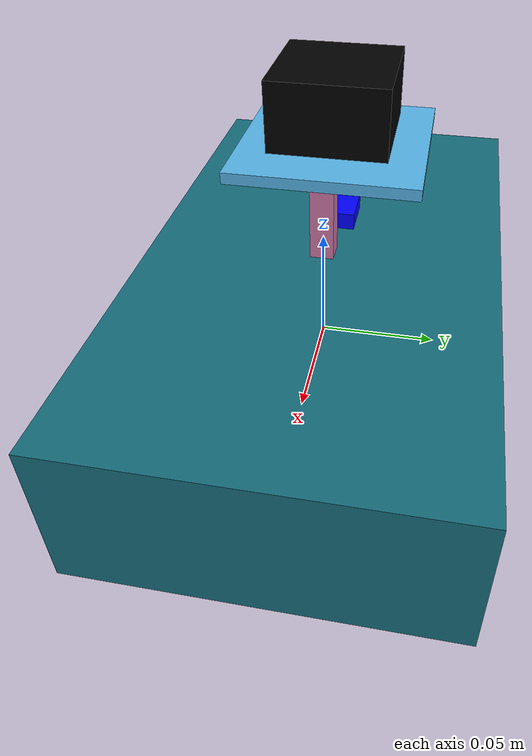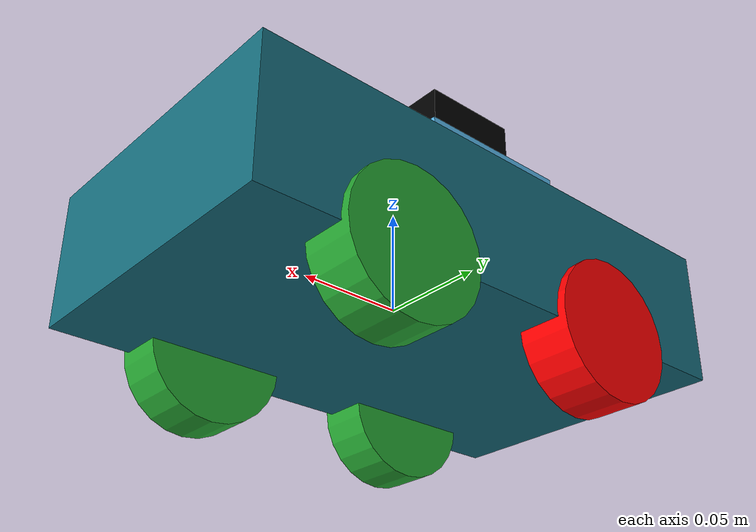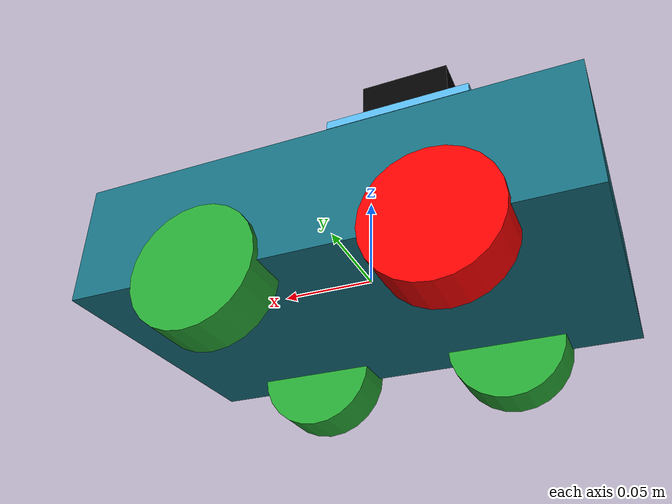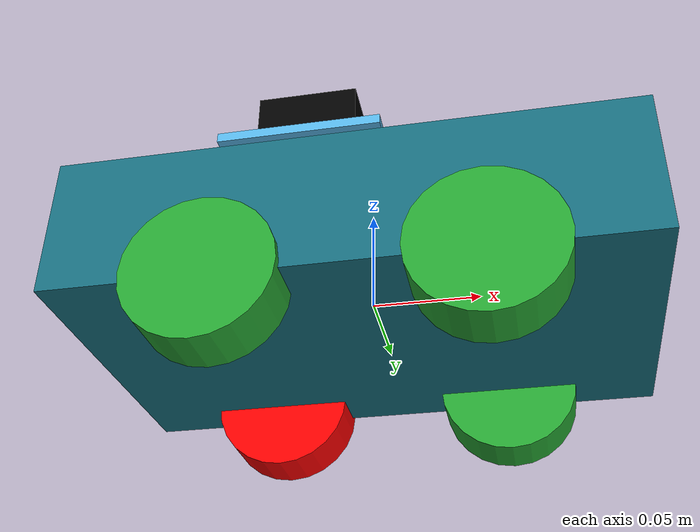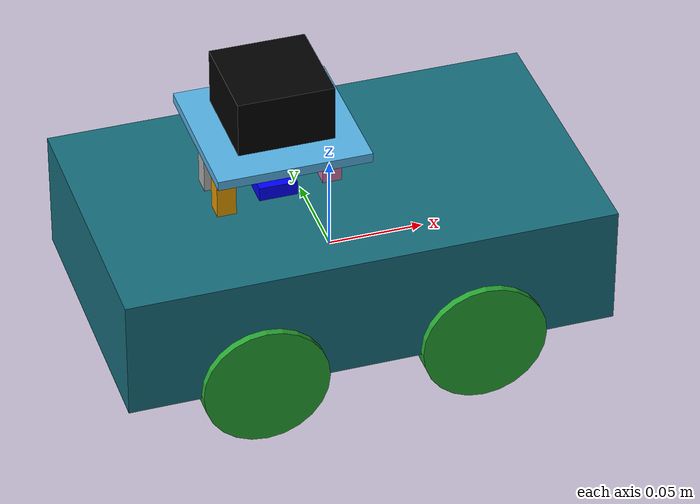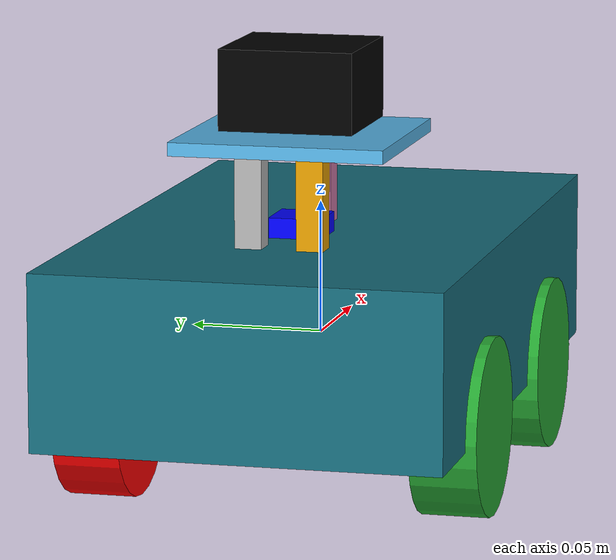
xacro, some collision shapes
<?xml version="1.0"?>
<robot name="box_bot">

  <material name="red">
      <color rgba="1.0 0.0 0.0 1"/>
  </material>

  <material name="green_light">
      <color rgba="0.0 1.0 0.0 1"/>
  </material>

  <material name="green_dark">
    <color rgba="0.0 0.5 0.0 1"/>
  </material>

  <material name="blue">
      <color rgba="0.0 0.0 1.0 1"/>
  </material>

  <material name="yellow">
      <color rgba="1.0 1.0 0.0 1"/>
  </material>

  <material name="black">
      <color rgba="0.0 0.0 0.0 1"/>
  </material>

  <material name="white">
      <color rgba="1.0 1.0 1.0 1"/>
  </material>

  <material name="box_bot_blue">
      <color rgba="0.088656 0.428691 0.491021 1"/>
  </material>

  <link name="base_footprint">
  </link>

  <!-- Body -->
  <link name="base_link">
    <visual>
      <geometry>
        <mesh filename="/home/llagoeiro/Desktop/FEI/TCC/TCC/software/src/simulation_pkg/meshes/cute_cube.dae" scale="0.256 0.150 0.065"/>
        <box size="0.256 0.150 0.065"/>
      </geometry>
      <material name="box_bot_blue"/>
    </visual>

    <collision>
      <geometry>
        <box size="0.256 0.150 0.065"/>
      </geometry>
    </collision>

    <inertial>
      <mass value="0.5"/>
      <origin rpy="0 0 0" xyz="0 0 0"/>
      <inertia ixx="0.0008333333333333335" ixy="0" ixz="0" iyy="0.0008333333333333335" iyz="0" izz="0.0008333333333333335"/>
    </inertial>

  </link>

  <joint name="base_footprint_joint" type="fixed">
    <origin rpy="0 0 0" xyz="0 0 0.010" />
    <parent link="base_footprint" />
    <child link="base_link" />
  </joint>

  <!-- Wheel Left Behind -->
  <link name="left_wheel">
      <visual>
        <origin rpy="0 1.5707 1.5707" xyz="0 0 0"/>
        <geometry>
          <cylinder length="0.025" radius="0.033"/>
        </geometry>
        <material name="red"/>
      </visual>

      <collision>
        <origin rpy="0 1.5707 1.5707" xyz="0 0 0"/>
        <geometry>
         <cylinder length="0.001" radius="0.001"/>
        </geometry>
      </collision>

      <inertial>
        <origin rpy="0 1.5707 1.5707" xyz="0 0 0"/>
        <mass value="0.05"/>
        <inertia ixx="1.531666666666667e-05" ixy="0" ixz="0" iyy="1.531666666666667e-05" iyz="0" izz="3.0625000000000006e-05"/>
      </inertial>

  </link>

  <joint name="joint_left_wheel" type="continuous">
    <origin rpy="0 0 0" xyz="-0.0575 0.0665 -0.03"/>
    <child link="left_wheel"/>
    <parent link="base_link"/>
    <axis rpy="0 0 0" xyz="0 1 0"/>
    <limit effort="10000" velocity="1000"/>
    <joint_properties damping="1.0" friction="1.0"/>
  </joint>

  <gazebo reference="left_wheel">
   <material>Gazebo/Black</material>
  </gazebo>

  <!-- Wheel Right Behind -->
  <link name="right_wheel">
      <visual>
        <origin rpy="0 1.5707 1.5707" xyz="0 0 0"/>
        <geometry>
          <cylinder length="0.025" radius="0.033"/>
        </geometry>
        <material name="green"/>
      </visual>

      <collision>
        <origin rpy="0 1.5707 1.5707" xyz="0 0 0"/>
        <geometry>
          <cylinder length="0.001" radius="0.001"/>
        </geometry>
      </collision>

      <inertial>
        <origin rpy="0 1.5707 1.5707" xyz="0 0 0"/>
        <mass value="0.05"/>
        <inertia ixx="1.531666666666667e-05" ixy="0" ixz="0" iyy="1.531666666666667e-05" iyz="0" izz="3.0625000000000006e-05"/>
      </inertial>
  </link>

  <joint name="joint_right_wheel" type="continuous">
    <origin rpy="0 0 0" xyz="-0.0575 -0.0665 -0.03"/>
    <child link="right_wheel"/>
    <parent link="base_link"/>
    <axis rpy="0 0 0" xyz="0 1 0"/>
    <limit effort="10000" velocity="1000"/>
    <joint_properties damping="1.0" friction="1.0"/>
  </joint>

  <gazebo reference="right_wheel">
   <material>Gazebo/Black</material>
  </gazebo>

  <!-- Wheel Right Front -->
  <link name="right_wheel_f">
      <visual>
        <origin rpy="0 1.5707 1.5707" xyz="0 0 0"/>
        <geometry>
          <cylinder length="0.025" radius="0.033"/>
        </geometry>
        <material name="green"/>
      </visual>

      <collision>
        <origin rpy="0 1.5707 1.5707" xyz="0 0 0"/>
        <geometry>
          <cylinder length="0.001" radius="0.001"/>
        </geometry>
      </collision>

      <inertial>
        <origin rpy="0 1.5707 1.5707" xyz="0 0 0"/>
        <mass value="0.05"/>
        <inertia ixx="1.531666666666667e-05" ixy="0" ixz="0" iyy="1.531666666666667e-05" iyz="0" izz="3.0625000000000006e-05"/>
      </inertial>
  </link>

  <gazebo reference="right_wheel_f">
   <material>Gazebo/Black</material>
  </gazebo>

  <joint name="joint_right_wheel_f" type="continuous">
    <origin rpy="0 0 0" xyz="0.0575 -0.0665 -0.03"/>
    <child link="right_wheel_f"/>
    <parent link="base_link"/>
    <axis rpy="0 0 0" xyz="0 1 0"/>
    <limit effort="10000" velocity="1000"/>
    <joint_properties damping="1.0" friction="1.0"/>
  </joint>

  <!-- Wheel Left Front -->
  <link name="left_wheel_f">
      <visual>
        <origin rpy="0 1.5707 1.5707" xyz="0 0 0"/>
        <geometry>
          <cylinder length="0.025" radius="0.033"/>
        </geometry>
        <material name="green"/>
      </visual>

      <collision>
        <origin rpy="0 1.5707 1.5707" xyz="0 0 0"/>
        <geometry>
          <cylinder length="0.001" radius="0.001"/>
        </geometry>
      </collision>

      <inertial>
        <origin rpy="0 1.5707 1.5707" xyz="0 0 0"/>
        <mass value="0.05"/>
        <inertia ixx="1.531666666666667e-05" ixy="0" ixz="0" iyy="1.531666666666667e-05" iyz="0" izz="3.0625000000000006e-05"/>
      </inertial>
  </link>

  <gazebo reference="left_wheel_f">
   <material>Gazebo/Black</material>
  </gazebo>

  <joint name="joint_left_wheel_f" type="continuous">
    <origin rpy="0 0 0" xyz="0.0575 0.0665 -0.03"/>
    <child link="left_wheel_f"/>
    <parent link="base_link"/>
    <axis rpy="0 0 0" xyz="0 1 0"/>
    <limit effort="10000" velocity="1000"/>
    <joint_properties damping="1.0" friction="1.0"/>
  </joint>

  <!-- Diferential Robot Wheel Left  -->
  <link name="diff_wheel_L">
      <collision>
        <origin rpy="0 1.5707 1.5707" xyz="0 0 0"/>
        <geometry>
          <cylinder length="0.025" radius="0.033"/>
        </geometry>
      </collision>

      <inertial>
        <origin rpy="0 1.5707 1.5707" xyz="0 0 0"/>
        <mass value="0.05"/>
        <inertia ixx="1.531666666666667e-05" ixy="0" ixz="0" iyy="1.531666666666667e-05" iyz="0" izz="3.0625000000000006e-05"/>
      </inertial>
  </link>

  <joint name="joint_diff_wheel_L" type="continuous">
    <origin rpy="0 0 0" xyz="0 0.0665 -0.03"/>
    <child link="diff_wheel_L"/>
    <parent link="base_link"/>
    <axis rpy="0 0 0" xyz="0 1 0"/>
    <limit effort="10000" velocity="1000"/>
    <joint_properties damping="1.0" friction="1.0"/>
  </joint>

  <!-- Diferential Robot Wheel Right  -->
  <link name="diff_wheel_R">
      <collision>
        <origin rpy="0 1.5707 1.5707" xyz="0 0 0"/>
        <geometry>
          <cylinder length="0.025" radius="0.033"/>
        </geometry>
      </collision>

      <inertial>
        <origin rpy="0 1.5707 1.5707" xyz="0 0 0"/>
        <mass value="0.05"/>
        <inertia ixx="1.531666666666667e-05" ixy="0" ixz="0" iyy="1.531666666666667e-05" iyz="0" izz="3.0625000000000006e-05"/>
      </inertial>
  </link>

  <joint name="joint_diff_wheel_R" type="continuous">
    <origin rpy="0 0 0" xyz="0 -0.0665 -0.03"/>
    <child link="diff_wheel_R"/>
    <parent link="base_link"/>
    <axis rpy="0 0 0" xyz="0 1 0"/>
    <limit effort="10000" velocity="1000"/>
    <joint_properties damping="1.0" friction="1.0"/>
  </joint>

  <!-- Caster Wheel Front -->
  <link name="front_yaw_link">
      <collision>
        <origin rpy="0 1.5707 1.5707" xyz="0 0 0"/>
        <geometry>
          <cylinder length="0.01" radius="0.007"/>
        </geometry>
      </collision>

      <inertial>
          <origin rpy="0 1.5707 1.5707" xyz="0 0 0"/>
          <mass value="0.001"/>
          <inertia ixx="5.145833333333334e-09" ixy="0" ixz="0" iyy="5.145833333333334e-09" iyz="0" izz="1.0125000000000003e-08"/>
      </inertial>

  </link>

  <joint name="front_yaw_joint" type="continuous">
    <origin rpy="0 0 0" xyz="0.08 0 -0.055" />
    <parent link="base_link" />
    <child link="front_yaw_link" />
    <axis xyz="0 0 1" />
    <limit effort="1000.0" velocity="100.0" />
    <dynamics damping="0.0" friction="0.1"/>
  </joint>

    <gazebo reference="front_yaw_link">
        <material>Gazebo/Blue</material>
    </gazebo>

  <link name="front_roll_link">
      <collision>
        <origin rpy="0 1.5707 1.5707" xyz="0 0 0"/>
        <geometry>
          <cylinder length="0.01" radius="0.007"/>
        </geometry>
      </collision>

      <inertial>
          <origin rpy="0 1.5707 1.5707" xyz="0 0 0"/>
          <mass value="0.001"/>
          <inertia ixx="5.145833333333334e-09" ixy="0" ixz="0" iyy="5.145833333333334e-09" iyz="0" izz="1.0125000000000003e-08"/>
      </inertial>
  </link>

  <joint name="front_roll_joint" type="continuous">
    <origin rpy="0 0 0" xyz="0 0 0" />
    <parent link="front_yaw_link" />
    <child link="front_roll_link" />
    <axis xyz="1 0 0" />
    <limit effort="1000.0" velocity="100.0" />
    <dynamics damping="0.0" friction="0.1"/>
  </joint>

    <gazebo reference="front_roll_link">
        <material>Gazebo/Red</material>
    </gazebo>

  <link name="front_pitch_link">
    <collision>
      <origin rpy="0 1.5707 1.5707" xyz="0 0 0"/>
      <geometry>
        <sphere radius="0.010"/>
      </geometry>
    </collision>

    <inertial>
        <origin rpy="0 1.5707 1.5707" xyz="0 0 0"/>
        <mass value="0.001"/>
        <inertia ixx="4e-08" ixy="0" ixz="0" iyy="4e-08" iyz="0" izz="4e-08"/>
    </inertial>
  </link>

  <gazebo reference="front_pitch_link">
    <kp>1000000000000000000000000000.0</kp>
    <kd>1000000000000000000000000000.0</kd>
    <mu1>0.5</mu1>
    <mu2>0.5</mu2>
    <material>Gazebo/Purple</material>
  </gazebo>

  <joint name="front_pitch_joint" type="continuous">
    <origin rpy="0 0 0" xyz="0 0 0" />
    <parent link="front_roll_link" />
    <child link="front_pitch_link" />
    <axis xyz="0 1 0" />
    <limit effort="1000.0" velocity="100.0" />
    <dynamics damping="0.0" friction="0.1"/>
  </joint>

<!-- Caster Wheel Back -->
  <link name="back_yaw_link">
      <collision>
        <origin rpy="0 1.5707 1.5707" xyz="0 0 0"/>
        <geometry>
          <cylinder length="0.001" radius="0.0045000000000000005"/>
        </geometry>
      </collision>

      <inertial>
          <origin rpy="0 1.5707 1.5707" xyz="0 0 0"/>
          <mass value="0.001"/>
          <inertia ixx="5.145833333333334e-09" ixy="0" ixz="0" iyy="5.145833333333334e-09" iyz="0" izz="1.0125000000000003e-08"/>
      </inertial>
  </link>

  <joint name="back_yaw_joint" type="continuous">
    <origin rpy="0 0 0" xyz="-0.08 0 -0.055" />
    <parent link="base_link" />
    <child link="back_yaw_link" />
    <axis xyz="0 0 1" />
    <limit effort="1000.0" velocity="100.0" />
    <dynamics damping="0.0" friction="0.1"/>
  </joint>

    <gazebo reference="back_yaw_link">
        <material>Gazebo/Blue</material>
    </gazebo>

  <link name="back_roll_link">
      <collision>
        <origin rpy="0 1.5707 1.5707" xyz="0 0 0"/>
        <geometry>
          <cylinder length="0.001" radius="0.0045000000000000005"/>
        </geometry>
      </collision>

      <inertial>
          <origin rpy="0 1.5707 1.5707" xyz="0 0 0"/>
          <mass value="0.001"/>
          <inertia ixx="5.145833333333334e-09" ixy="0" ixz="0" iyy="5.145833333333334e-09" iyz="0" izz="1.0125000000000003e-08"/>
      </inertial>
  </link>

  <joint name="back_roll_joint" type="continuous">
    <origin rpy="0 0 0" xyz="0 0 0" />
    <parent link="back_yaw_link" />
    <child link="back_roll_link" />
    <axis xyz="1 0 0" />
    <limit effort="1000.0" velocity="100.0" />
    <dynamics damping="0.0" friction="0.1"/>
  </joint>

    <gazebo reference="back_roll_link">
        <material>Gazebo/Red</material>
    </gazebo>

  <link name="back_pitch_link">
    <collision>
      <origin rpy="0 1.5707 1.5707" xyz="0 0 0"/>
      <geometry>
        <sphere radius="0.010"/>
      </geometry>
    </collision>

    <inertial>
        <origin rpy="0 1.5707 1.5707" xyz="0 0 0"/>
        <mass value="0.001"/>
        <inertia ixx="4e-08" ixy="0" ixz="0" iyy="4e-08" iyz="0" izz="4e-08"/>
    </inertial>
  </link>

  <gazebo reference="back_pitch_link">
    <kp>1000000000000000000000000000.0</kp>
    <kd>1000000000000000000000000000.0</kd>
    <mu1>0.5</mu1>
    <mu2>0.5</mu2>
    <material>Gazebo/Yellow</material>
  </gazebo>

  <joint name="back_pitch_joint" type="continuous">
    <origin rpy="0 0 0" xyz="0 0 0" />
    <parent link="back_roll_link" />
    <child link="back_pitch_link" />
    <axis xyz="0 1 0" />
    <limit effort="1000.0" velocity="100.0" />
    <dynamics damping="0.0" friction="0.1"/>
  </joint>

    <!--Estrutura para base do LIDAR-->

  <!--Struct 1-->
  <joint name="struct1_joint" type="fixed">
    <parent link="base_link"/>
    <child link="struct1_link"/>
    <origin xyz="0.0 0.0 0.05"/>
    <axis xyz="0 0 0"/>
  </joint>
  <link name="struct1_link">
    <visual>
      <geometry>
          <box size="0.01 0.01 0.038"/>
      </geometry>
    </visual>

    <collision>
      <geometry>
        <box size="0.01 0.01 0.038"/>
      </geometry>
    </collision>

    <inertial>
      <mass value="0.5"/>
      <origin rpy="0 0 0" xyz="0 0 0"/>
      <inertia ixx="0.0008333333333333335" ixy="0" ixz="0" iyy="0.0008333333333333335" iyz="0" izz="0.0008333333333333335"/>
    </inertial>

  </link>

  <!--Struct 2-->
  <joint name="struct2_joint" type="fixed">
    <parent link="base_link"/>
    <child link="struct2_link"/>
    <origin xyz="-0.059 0.0115 0.05"/>
    <axis xyz="0 0 0"/>
  </joint>
  <link name="struct2_link">
    <visual>
      <geometry>
          <box size="0.01 0.01 0.038"/>
      </geometry>

    </visual>

    <collision>
      <geometry>
        <box size="0.01 0.01 0.038"/>
      </geometry>
    </collision>

    <inertial>
      <mass value="0.5"/>
      <origin rpy="0 0 0" xyz="0 0 0"/>
      <inertia ixx="0.0008333333333333335" ixy="0" ixz="0" iyy="0.0008333333333333335" iyz="0" izz="0.0008333333333333335"/>
    </inertial>

  </link>

  <!--Struct 3-->
  <joint name="struct3_joint" type="fixed">
    <parent link="base_link"/>
    <child link="struct3_link"/>
    <origin xyz="-0.059 -0.0115 0.05"/>
    <axis xyz="0 0 0"/>
  </joint>
  <link name="struct3_link">
    <visual>
      <geometry>
          <box size="0.01 0.01 0.038"/>
      </geometry>
    </visual>

    <collision>
      <geometry>
        <box size="0.01 0.01 0.038"/>
      </geometry>
    </collision>

    <inertial>
      <mass value="0.5"/>
      <origin rpy="0 0 0" xyz="0 0 0"/>
      <inertia ixx="0.0008333333333333335" ixy="0" ixz="0" iyy="0.0008333333333333335" iyz="0" izz="0.0008333333333333335"/>
    </inertial>

  </link>

  <!--Base do LIDAR-->
  <joint name="lidarB_joint" type="fixed">
    <parent link="struct1_link"/>
    <child link="lidarB_link"/>
    <origin xyz="-0.03 0.0 0.019"/>
    <axis xyz="0 0 0"/>
  </joint>
  <link name="lidarB_link">

    <visual>
      <geometry>
          <box size="0.08 0.08 0.005"/>
      </geometry>
    </visual>

    <collision>
      <geometry>
        <box size="0.08 0.08 0.005"/>
      </geometry>
    </collision>

    <inertial>
      <mass value="0.5"/>
      <origin rpy="0 0 0" xyz="0 0 0"/>
      <inertia ixx="0.0008333333333333335" ixy="0" ixz="0" iyy="0.0008333333333333335" iyz="0" izz="0.0008333333333333335"/>
    </inertial>
  </link>

  <!--LIDAR-->
  <joint name="lidar_joint" type="fixed">
    <parent link="lidarB_link"/>
    <child link="lidar_link"/>
    <origin xyz="0.0 0.0 0.020"/>
    <axis xyz="0 0 0"/>
  </joint>

  <link name="lidar_link">

    <visual>
      <geometry>
        <mesh filename="/home/llagoeiro/Desktop/FEI/TCC/TCC/software/src/simulation_pkg/meshes/sensors/rplidar.dae" scale="1.0 1.0 1.0"/>
      </geometry>
      <material name="black"/>
    </visual>

    <collision>
      <geometry>
        <box size="0.05 0.05 0.030"/>
      </geometry>
    </collision>

    <inertial>
      <mass value="0.5"/>
      <origin rpy="0 0 0" xyz="0 0 0"/>
      <inertia ixx="0.0008333333333333335" ixy="0" ixz="0" iyy="0.0008333333333333335" iyz="0" izz="0.0008333333333333335"/>
    </inertial>

  </link>

  <!--Gyro-->
  <joint name="gyro_joint" type="fixed">
    <parent link="base_link"/>
    <child link="gyro_link"/>
    <origin xyz="-0.03 0.0 0.0325"/>
    <axis xyz="0 0 0"/>
  </joint>

  <link name="gyro_link">
    <visual>
      <geometry>
          <box size="0.02 0.02 0.015"/>
      </geometry>
      <material name="blue"/>
    </visual>

    <collision>
      <geometry>
        <box size="0.02 0.02 0.015"/>
      </geometry>
    </collision>

    <inertial>
      <mass value="0.5"/>
      <origin rpy="0 0 0" xyz="0 0 0"/>
      <inertia ixx="0.0008333333333333335" ixy="0" ixz="0" iyy="0.0008333333333333335" iyz="0" izz="0.0008333333333333335"/>
    </inertial>
  </link>

  <!--Plugins-->

  <gazebo reference="lidar_link">
    <sensor type="ray" name="head_hokuyo_sensor">
        <visualize> </visualize>
        <updateRate>30</updateRate>
        <ray>
            <scan>
              <horizontal>
                <samples>920</samples>
                <resolution>1</resolution>
                <min_angle>-3.14</min_angle>
                <max_angle>3.14</max_angle>
              </horizontal>
            </scan>
            <range>
              <min>0.1</min>
              <max>40.0</max>
              <resolution>0.05</resolution>
            </range>
            <noise>
              <type>gaussian</type>
              <mean>0.0</mean>
              <stddev>0.01</stddev>
            </noise>
        </ray>

        <plugin name="gazebo_ros_head_hokuyo_controlle" filename="libgazebo_ros_ray_sensor.so" >
        <ros>
          <remapping>~/out:=/scan</remapping>
        </ros>
        <output_type>sensor_msgs/LaserScan</output_type>
        </plugin>
    </sensor>
  </gazebo>

  <gazebo reference="gyro_link">
    <gravity>true</gravity>
    <sensor name="imu_sensor" type="imu">
      <always_on>true</always_on>
      <update_rate>100</update_rate>
      <visualize>true</visualize>
      <topic>imu</topic>
      <plugin filename="libgazebo_ros_imu_sensor.so" name="imu_plugin">
        <ros>
          <remapping>~/out:=/imu</remapping>
        </ros>
        <output_type>sensor_msgs/Imu</output_type>
        <bodyName>imu_link</bodyName>
        <updateRateHZ>10.0</updateRateHZ>
        <gaussianNoise>0.0</gaussianNoise>
        <xyzOffset>0 0 0</xyzOffset>
        <rpyOffset>0 0 0</rpyOffset>
        <frameName>imu_link</frameName>
        <initialOrientationAsReference>false</initialOrientationAsReference>
      </plugin>
      <pose>0 0 0 0 0 0</pose>
    </sensor>
  </gazebo>

    <!-- Differential drive -->
  <gazebo>
    <plugin filename="libgazebo_ros_diff_drive.so" name="differential_drive_controller">

      <updateRate>30</updateRate>

      <!-- wheels -->
      <left_joint>joint_diff_wheel_L</left_joint>
      <right_joint>joint_diff_wheel_R</right_joint>

      <!-- kinematics -->
      <wheel_separation>0.166</wheel_separation>
      <wheel_diameter>0.07</wheel_diameter>

      <!-- limits -->
      <max_wheel_torque>1.0</max_wheel_torque>
      <max_wheel_acceleration>2.0</max_wheel_acceleration>

      <!-- output -->
      <publish_odom>true</publish_odom>
      <publish_odom_tf>true</publish_odom_tf>
      <publish_wheel_tf>true</publish_wheel_tf>

      <odometry_frame>odom</odometry_frame>
      <robotBaseFrame>base_link</robotBaseFrame>

    </plugin>
  </gazebo>

</robot>
